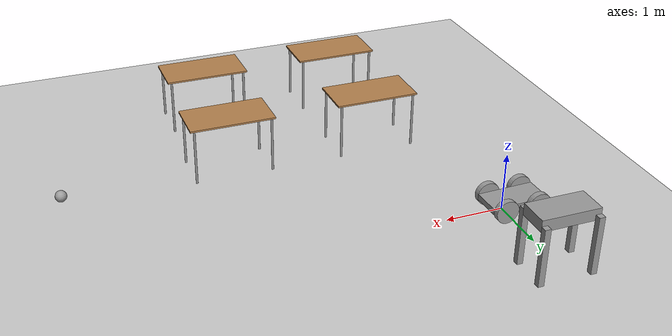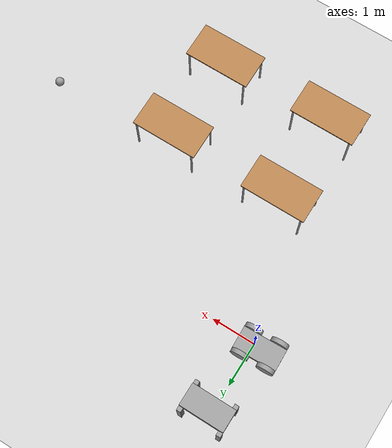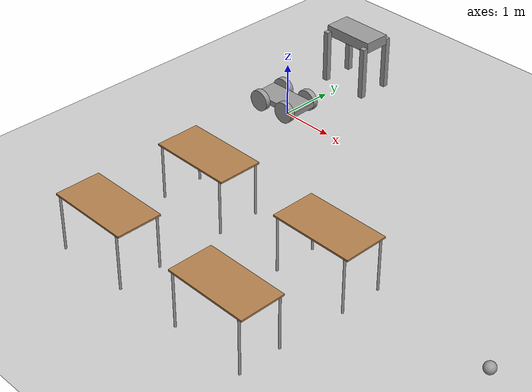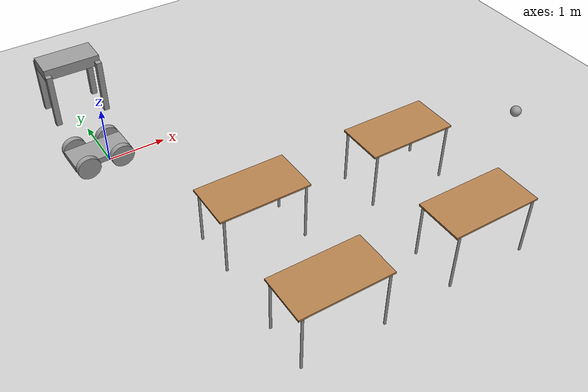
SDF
<sdf version="1.6">
 <world name="default">
  <model name="ground_plane">
   <static>1</static>
   <link name="link">
    <collision name="collision">
     <geometry><plane><normal>0 0 1</normal><size>100 100</size></plane></geometry>
     <surface><friction><ode><mu>100</mu><mu2>50</mu2></ode></friction></surface>
    </collision>
    <visual name="visual">
     <cast_shadows>0</cast_shadows>
     <geometry><plane><normal>0 0 1</normal><size>100 100</size></plane></geometry>
     <material>
      <script><uri>file://media/materials/scripts/gazebo.material</uri><name>Gazebo/Grey</name></script>
     </material>
    </visual>
   </link>
  </model>
  <model name="table">
   <static>1</static>
   <link name="link">
    <collision name="surface">
     <pose>0 0 1 0 -0 0</pose>
     <geometry><box><size>1.5 0.8 0.03</size></box></geometry>
     <surface><friction><ode><mu>0.6</mu><mu2>0.6</mu2></ode></friction></surface>
    </collision>
    <visual name="visual1">
     <pose>0 0 1 0 -0 0</pose>
     <geometry><box><size>1.5 0.8 0.03</size></box></geometry>
     <material>
      <script><uri>file://media/materials/scripts/gazebo.material</uri><name>Gazebo/Wood</name></script>
     </material>
    </visual>
    <collision name="front_left_leg">
     <pose>0.68 0.38 0.5 0 -0 0</pose>
     <geometry><cylinder><radius>0.02</radius><length>1</length></cylinder></geometry>
    </collision>
    <visual name="front_left_leg">
     <pose>0.68 0.38 0.5 0 -0 0</pose>
     <geometry><cylinder><radius>0.02</radius><length>1</length></cylinder></geometry>
     <material>
      <script><uri>file://media/materials/scripts/gazebo.material</uri><name>Gazebo/Grey</name></script>
     </material>
    </visual>
    <collision name="front_right_leg">
     <pose>0.68 -0.38 0.5 0 -0 0</pose>
     <geometry><cylinder><radius>0.02</radius><length>1</length></cylinder></geometry>
    </collision>
    <visual name="front_right_leg">
     <pose>0.68 -0.38 0.5 0 -0 0</pose>
     <geometry><cylinder><radius>0.02</radius><length>1</length></cylinder></geometry>
     <material>
      <script><uri>file://media/materials/scripts/gazebo.material</uri><name>Gazebo/Grey</name></script>
     </material>
    </visual>
    <collision name="back_right_leg">
     <pose>-0.68 -0.38 0.5 0 -0 0</pose>
     <geometry><cylinder><radius>0.02</radius><length>1</length></cylinder></geometry>
    </collision>
    <visual name="back_right_leg">
     <pose>-0.68 -0.38 0.5 0 -0 0</pose>
     <geometry><cylinder><radius>0.02</radius><length>1</length></cylinder></geometry>
     <material>
      <script><uri>file://media/materials/scripts/gazebo.material</uri><name>Gazebo/Grey</name></script>
     </material>
    </visual>
    <collision name="back_left_leg">
     <pose>-0.68 0.38 0.5 0 -0 0</pose>
     <geometry><cylinder><radius>0.02</radius><length>1</length></cylinder></geometry>
    </collision>
    <visual name="back_left_leg">
     <pose>-0.68 0.38 0.5 0 -0 0</pose>
     <geometry><cylinder><radius>0.02</radius><length>1</length></cylinder></geometry>
     <material>
      <script><uri>file://media/materials/scripts/gazebo.material</uri><name>Gazebo/Grey</name></script>
     </material>
    </visual>
   </link>
   <pose>3.69485 -4.8392 0 0 -0 0</pose>
  </model>
  <model name="table_0">
   <static>1</static>
   <link name="link">
    <collision name="surface">
     <pose>0 0 1 0 -0 0</pose>
     <geometry><box><size>1.5 0.8 0.03</size></box></geometry>
     <surface><friction><ode><mu>0.6</mu><mu2>0.6</mu2></ode></friction></surface>
    </collision>
    <visual name="visual1">
     <pose>0 0 1 0 -0 0</pose>
     <geometry><box><size>1.5 0.8 0.03</size></box></geometry>
     <material>
      <script><uri>file://media/materials/scripts/gazebo.material</uri><name>Gazebo/Wood</name></script>
     </material>
    </visual>
    <collision name="front_left_leg">
     <pose>0.68 0.38 0.5 0 -0 0</pose>
     <geometry><cylinder><radius>0.02</radius><length>1</length></cylinder></geometry>
    </collision>
    <visual name="front_left_leg">
     <pose>0.68 0.38 0.5 0 -0 0</pose>
     <geometry><cylinder><radius>0.02</radius><length>1</length></cylinder></geometry>
     <material>
      <script><uri>file://media/materials/scripts/gazebo.material</uri><name>Gazebo/Grey</name></script>
     </material>
    </visual>
    <collision name="front_right_leg">
     <pose>0.68 -0.38 0.5 0 -0 0</pose>
     <geometry><cylinder><radius>0.02</radius><length>1</length></cylinder></geometry>
    </collision>
    <visual name="front_right_leg">
     <pose>0.68 -0.38 0.5 0 -0 0</pose>
     <geometry><cylinder><radius>0.02</radius><length>1</length></cylinder></geometry>
     <material>
      <script><uri>file://media/materials/scripts/gazebo.material</uri><name>Gazebo/Grey</name></script>
     </material>
    </visual>
    <collision name="back_right_leg">
     <pose>-0.68 -0.38 0.5 0 -0 0</pose>
     <geometry><cylinder><radius>0.02</radius><length>1</length></cylinder></geometry>
    </collision>
    <visual name="back_right_leg">
     <pose>-0.68 -0.38 0.5 0 -0 0</pose>
     <geometry><cylinder><radius>0.02</radius><length>1</length></cylinder></geometry>
     <material>
      <script><uri>file://media/materials/scripts/gazebo.material</uri><name>Gazebo/Grey</name></script>
     </material>
    </visual>
    <collision name="back_left_leg">
     <pose>-0.68 0.38 0.5 0 -0 0</pose>
     <geometry><cylinder><radius>0.02</radius><length>1</length></cylinder></geometry>
    </collision>
    <visual name="back_left_leg">
     <pose>-0.68 0.38 0.5 0 -0 0</pose>
     <geometry><cylinder><radius>0.02</radius><length>1</length></cylinder></geometry>
     <material>
      <script><uri>file://media/materials/scripts/gazebo.material</uri><name>Gazebo/Grey</name></script>
     </material>
    </visual>
   </link>
   <pose>3.78546 -2.89544 0 0 -0 0</pose>
  </model>
  <model name="table_1">
   <static>1</static>
   <link name="link">
    <collision name="surface">
     <pose>0 0 1 0 -0 0</pose>
     <geometry><box><size>1.5 0.8 0.03</size></box></geometry>
     <surface><friction><ode><mu>0.6</mu><mu2>0.6</mu2></ode></friction></surface>
    </collision>
    <visual name="visual1">
     <pose>0 0 1 0 -0 0</pose>
     <geometry><box><size>1.5 0.8 0.03</size></box></geometry>
     <material>
      <script><uri>file://media/materials/scripts/gazebo.material</uri><name>Gazebo/Wood</name></script>
     </material>
    </visual>
    <collision name="front_left_leg">
     <pose>0.68 0.38 0.5 0 -0 0</pose>
     <geometry><cylinder><radius>0.02</radius><length>1</length></cylinder></geometry>
    </collision>
    <visual name="front_left_leg">
     <pose>0.68 0.38 0.5 0 -0 0</pose>
     <geometry><cylinder><radius>0.02</radius><length>1</length></cylinder></geometry>
     <material>
      <script><uri>file://media/materials/scripts/gazebo.material</uri><name>Gazebo/Grey</name></script>
     </material>
    </visual>
    <collision name="front_right_leg">
     <pose>0.68 -0.38 0.5 0 -0 0</pose>
     <geometry><cylinder><radius>0.02</radius><length>1</length></cylinder></geometry>
    </collision>
    <visual name="front_right_leg">
     <pose>0.68 -0.38 0.5 0 -0 0</pose>
     <geometry><cylinder><radius>0.02</radius><length>1</length></cylinder></geometry>
     <material>
      <script><uri>file://media/materials/scripts/gazebo.material</uri><name>Gazebo/Grey</name></script>
     </material>
    </visual>
    <collision name="back_right_leg">
     <pose>-0.68 -0.38 0.5 0 -0 0</pose>
     <geometry><cylinder><radius>0.02</radius><length>1</length></cylinder></geometry>
    </collision>
    <visual name="back_right_leg">
     <pose>-0.68 -0.38 0.5 0 -0 0</pose>
     <geometry><cylinder><radius>0.02</radius><length>1</length></cylinder></geometry>
     <material>
      <script><uri>file://media/materials/scripts/gazebo.material</uri><name>Gazebo/Grey</name></script>
     </material>
    </visual>
    <collision name="back_left_leg">
     <pose>-0.68 0.38 0.5 0 -0 0</pose>
     <geometry><cylinder><radius>0.02</radius><length>1</length></cylinder></geometry>
    </collision>
    <visual name="back_left_leg">
     <pose>-0.68 0.38 0.5 0 -0 0</pose>
     <geometry><cylinder><radius>0.02</radius><length>1</length></cylinder></geometry>
     <material>
      <script><uri>file://media/materials/scripts/gazebo.material</uri><name>Gazebo/Grey</name></script>
     </material>
    </visual>
   </link>
   <pose>1.13201 -4.88158 0 0 -0 0</pose>
  </model>
  <model name="table_2">
   <static>1</static>
   <link name="link">
    <collision name="surface">
     <pose>0 0 1 0 -0 0</pose>
     <geometry><box><size>1.5 0.8 0.03</size></box></geometry>
     <surface><friction><ode><mu>0.6</mu><mu2>0.6</mu2></ode></friction></surface>
    </collision>
    <visual name="visual1">
     <pose>0 0 1 0 -0 0</pose>
     <geometry><box><size>1.5 0.8 0.03</size></box></geometry>
     <material>
      <script><uri>file://media/materials/scripts/gazebo.material</uri><name>Gazebo/Wood</name></script>
     </material>
    </visual>
    <collision name="front_left_leg">
     <pose>0.68 0.38 0.5 0 -0 0</pose>
     <geometry><cylinder><radius>0.02</radius><length>1</length></cylinder></geometry>
    </collision>
    <visual name="front_left_leg">
     <pose>0.68 0.38 0.5 0 -0 0</pose>
     <geometry><cylinder><radius>0.02</radius><length>1</length></cylinder></geometry>
     <material>
      <script><uri>file://media/materials/scripts/gazebo.material</uri><name>Gazebo/Grey</name></script>
     </material>
    </visual>
    <collision name="front_right_leg">
     <pose>0.68 -0.38 0.5 0 -0 0</pose>
     <geometry><cylinder><radius>0.02</radius><length>1</length></cylinder></geometry>
    </collision>
    <visual name="front_right_leg">
     <pose>0.68 -0.38 0.5 0 -0 0</pose>
     <geometry><cylinder><radius>0.02</radius><length>1</length></cylinder></geometry>
     <material>
      <script><uri>file://media/materials/scripts/gazebo.material</uri><name>Gazebo/Grey</name></script>
     </material>
    </visual>
    <collision name="back_right_leg">
     <pose>-0.68 -0.38 0.5 0 -0 0</pose>
     <geometry><cylinder><radius>0.02</radius><length>1</length></cylinder></geometry>
    </collision>
    <visual name="back_right_leg">
     <pose>-0.68 -0.38 0.5 0 -0 0</pose>
     <geometry><cylinder><radius>0.02</radius><length>1</length></cylinder></geometry>
     <material>
      <script><uri>file://media/materials/scripts/gazebo.material</uri><name>Gazebo/Grey</name></script>
     </material>
    </visual>
    <collision name="back_left_leg">
     <pose>-0.68 0.38 0.5 0 -0 0</pose>
     <geometry><cylinder><radius>0.02</radius><length>1</length></cylinder></geometry>
    </collision>
    <visual name="back_left_leg">
     <pose>-0.68 0.38 0.5 0 -0 0</pose>
     <geometry><cylinder><radius>0.02</radius><length>1</length></cylinder></geometry>
     <material>
      <script><uri>file://media/materials/scripts/gazebo.material</uri><name>Gazebo/Grey</name></script>
     </material>
    </visual>
   </link>
   <pose>1.14087 -2.89178 0 0 -0 0</pose>
  </model>
  <model name="robot2">
   <link name="link_10">
    <inertial>
     <mass>1</mass>
     <inertia>
      <ixx>0.166667</ixx>
      <ixy>0</ixy>
      <ixz>0</ixz>
      <iyy>0.166667</iyy>
      <iyz>0</iyz>
      <izz>0.166667</izz>
     </inertia>
    </inertial>
    <visual name="visual">
     <geometry><box><size>1 0.5 0.1</size></box></geometry>
     <material>
      <lighting>1</lighting>
      <script><uri>file://media/materials/scripts/gazebo.material</uri><name>Gazebo/Grey</name></script>
      <shader type="pixel"><normal_map>__default__</normal_map></shader>
      <ambient>0.3 0.3 0.3 1</ambient>
      <diffuse>0.7 0.7 0.7 1</diffuse>
      <specular>0.01 0.01 0.01 1</specular>
      <emissive>0 0 0 1</emissive>
     </material>
    </visual>
    <collision name="collision">
     <geometry><box><size>1 0.5 0.1</size></box></geometry>
     <surface>
      <friction>
       <ode><mu>1</mu><mu2>1</mu2><fdir1>0 0 0</fdir1><slip1>0</slip1><slip2>0</slip2></ode>
       <torsional>
        <coefficient>1</coefficient>
        <patch_radius>0</patch_radius>
        <surface_radius>0</surface_radius>
        <use_patch_radius>1</use_patch_radius>
        <ode><slip>0</slip></ode>
       </torsional>
      </friction>
      <bounce><restitution_coefficient>0</restitution_coefficient><threshold>1e+06</threshold></bounce>
      <contact>
       <collide_without_contact>0</collide_without_contact>
       <collide_without_contact_bitmask>1</collide_without_contact_bitmask>
       <collide_bitmask>1</collide_bitmask>
       <ode>
        <soft_cfm>0</soft_cfm>
        <soft_erp>0.2</soft_erp>
        <kp>1e+13</kp>
        <kd>1</kd>
        <max_vel>0.01</max_vel>
        <min_depth>0</min_depth>
       </ode>
       <bullet>
        <split_impulse>1</split_impulse>
        <split_impulse_penetration_threshold>-0.01</split_impulse_penetration_threshold>
        <soft_cfm>0</soft_cfm>
        <soft_erp>0.2</soft_erp>
        <kp>1e+13</kp>
        <kd>1</kd>
       </bullet>
      </contact>
     </surface>
    </collision>
   </link>
   <link name="link_11_clone">
    <pose>-0.3 0.300019 0 0 -0 0</pose>
    <inertial>
     <mass>1</mass>
     <inertia><ixx>0.145833</ixx><ixy>0</ixy><ixz>0</ixz><iyy>0.145833</iyy><iyz>0</iyz><izz>0.125</izz></inertia>
    </inertial>
    <visual name="visual">
     <pose>0 0 0 1.5707 -0 0</pose>
     <geometry><cylinder><radius>0.2</radius><length>0.1</length></cylinder></geometry>
     <material>
      <lighting>1</lighting>
      <script><uri>file://media/materials/scripts/gazebo.material</uri><name>Gazebo/Grey</name></script>
      <shader type="pixel"><normal_map>__default__</normal_map></shader>
      <ambient>0.3 0.3 0.3 1</ambient>
      <diffuse>0.7 0.7 0.7 1</diffuse>
      <specular>0.01 0.01 0.01 1</specular>
      <emissive>0 0 0 1</emissive>
     </material>
    </visual>
    <collision name="collision">
     <pose>0 0 0 1.5707 -0 0</pose>
     <geometry><cylinder><radius>0.2</radius><length>0.1</length></cylinder></geometry>
     <surface>
      <friction>
       <ode><mu>1</mu><mu2>1</mu2><fdir1>0 0 0</fdir1><slip1>0</slip1><slip2>0</slip2></ode>
       <torsional>
        <coefficient>1</coefficient>
        <patch_radius>0</patch_radius>
        <surface_radius>0</surface_radius>
        <use_patch_radius>1</use_patch_radius>
        <ode><slip>0</slip></ode>
       </torsional>
      </friction>
      <bounce><restitution_coefficient>0</restitution_coefficient><threshold>1e+06</threshold></bounce>
      <contact>
       <collide_without_contact>0</collide_without_contact>
       <collide_without_contact_bitmask>1</collide_without_contact_bitmask>
       <collide_bitmask>1</collide_bitmask>
       <ode>
        <soft_cfm>0</soft_cfm>
        <soft_erp>0.2</soft_erp>
        <kp>1e+13</kp>
        <kd>1</kd>
        <max_vel>0.01</max_vel>
        <min_depth>0</min_depth>
       </ode>
       <bullet>
        <split_impulse>1</split_impulse>
        <split_impulse_penetration_threshold>-0.01</split_impulse_penetration_threshold>
        <soft_cfm>0</soft_cfm>
        <soft_erp>0.2</soft_erp>
        <kp>1e+13</kp>
        <kd>1</kd>
       </bullet>
      </contact>
     </surface>
    </collision>
   </link>
   <link name="link_11_clone_clone">
    <pose>-0.3 -0.300019 0 0 -0 0</pose>
    <inertial>
     <mass>1</mass>
     <inertia><ixx>0.145833</ixx><ixy>0</ixy><ixz>0</ixz><iyy>0.145833</iyy><iyz>0</iyz><izz>0.125</izz></inertia>
    </inertial>
    <visual name="visual">
     <pose>0 0 0 1.5707 -0 0</pose>
     <geometry><cylinder><radius>0.2</radius><length>0.1</length></cylinder></geometry>
     <material>
      <lighting>1</lighting>
      <script><uri>file://media/materials/scripts/gazebo.material</uri><name>Gazebo/Grey</name></script>
      <shader type="pixel"><normal_map>__default__</normal_map></shader>
      <ambient>0.3 0.3 0.3 1</ambient>
      <diffuse>0.7 0.7 0.7 1</diffuse>
      <specular>0.01 0.01 0.01 1</specular>
      <emissive>0 0 0 1</emissive>
     </material>
    </visual>
    <collision name="collision">
     <pose>0 0 0 1.5707 -0 0</pose>
     <geometry><cylinder><radius>0.2</radius><length>0.1</length></cylinder></geometry>
     <surface>
      <friction>
       <ode><mu>1</mu><mu2>1</mu2><fdir1>0 0 0</fdir1><slip1>0</slip1><slip2>0</slip2></ode>
       <torsional>
        <coefficient>1</coefficient>
        <patch_radius>0</patch_radius>
        <surface_radius>0</surface_radius>
        <use_patch_radius>1</use_patch_radius>
        <ode><slip>0</slip></ode>
       </torsional>
      </friction>
      <bounce><restitution_coefficient>0</restitution_coefficient><threshold>1e+06</threshold></bounce>
      <contact>
       <collide_without_contact>0</collide_without_contact>
       <collide_without_contact_bitmask>1</collide_without_contact_bitmask>
       <collide_bitmask>1</collide_bitmask>
       <ode>
        <soft_cfm>0</soft_cfm>
        <soft_erp>0.2</soft_erp>
        <kp>1e+13</kp>
        <kd>1</kd>
        <max_vel>0.01</max_vel>
        <min_depth>0</min_depth>
       </ode>
       <bullet>
        <split_impulse>1</split_impulse>
        <split_impulse_penetration_threshold>-0.01</split_impulse_penetration_threshold>
        <soft_cfm>0</soft_cfm>
        <soft_erp>0.2</soft_erp>
        <kp>1e+13</kp>
        <kd>1</kd>
       </bullet>
      </contact>
     </surface>
    </collision>
   </link>
   <link name="link_11_clone_clone_0">
    <pose>0.3 -0.300019 0 0 -0 0</pose>
    <inertial>
     <mass>1</mass>
     <inertia><ixx>0.145833</ixx><ixy>0</ixy><ixz>0</ixz><iyy>0.145833</iyy><iyz>0</iyz><izz>0.125</izz></inertia>
    </inertial>
    <visual name="visual">
     <pose>0 0 0 1.5707 -0 0</pose>
     <geometry><cylinder><radius>0.2</radius><length>0.1</length></cylinder></geometry>
     <material>
      <lighting>1</lighting>
      <script><uri>file://media/materials/scripts/gazebo.material</uri><name>Gazebo/Grey</name></script>
      <shader type="pixel"><normal_map>__default__</normal_map></shader>
      <ambient>0.3 0.3 0.3 1</ambient>
      <diffuse>0.7 0.7 0.7 1</diffuse>
      <specular>0.01 0.01 0.01 1</specular>
      <emissive>0 0 0 1</emissive>
     </material>
    </visual>
    <collision name="collision">
     <pose>0 0 0 1.5707 -0 0</pose>
     <geometry><cylinder><radius>0.2</radius><length>0.1</length></cylinder></geometry>
     <surface>
      <friction>
       <ode><mu>1</mu><mu2>1</mu2><fdir1>0 0 0</fdir1><slip1>0</slip1><slip2>0</slip2></ode>
       <torsional>
        <coefficient>1</coefficient>
        <patch_radius>0</patch_radius>
        <surface_radius>0</surface_radius>
        <use_patch_radius>1</use_patch_radius>
        <ode><slip>0</slip></ode>
       </torsional>
      </friction>
      <bounce><restitution_coefficient>0</restitution_coefficient><threshold>1e+06</threshold></bounce>
      <contact>
       <collide_without_contact>0</collide_without_contact>
       <collide_without_contact_bitmask>1</collide_without_contact_bitmask>
       <collide_bitmask>1</collide_bitmask>
       <ode>
        <soft_cfm>0</soft_cfm>
        <soft_erp>0.2</soft_erp>
        <kp>1e+13</kp>
        <kd>1</kd>
        <max_vel>0.01</max_vel>
        <min_depth>0</min_depth>
       </ode>
       <bullet>
        <split_impulse>1</split_impulse>
        <split_impulse_penetration_threshold>-0.01</split_impulse_penetration_threshold>
        <soft_cfm>0</soft_cfm>
        <soft_erp>0.2</soft_erp>
        <kp>1e+13</kp>
        <kd>1</kd>
       </bullet>
      </contact>
     </surface>
    </collision>
   </link>
   <link name="link_11_clone_clone_1">
    <pose>0.3 0.300019 0 0 -0 0</pose>
    <inertial>
     <mass>1</mass>
     <inertia><ixx>0.145833</ixx><ixy>0</ixy><ixz>0</ixz><iyy>0.145833</iyy><iyz>0</iyz><izz>0.125</izz></inertia>
    </inertial>
    <visual name="visual">
     <pose>0 0 0 1.5707 -0 0</pose>
     <geometry><cylinder><radius>0.2</radius><length>0.1</length></cylinder></geometry>
     <material>
      <lighting>1</lighting>
      <script><uri>file://media/materials/scripts/gazebo.material</uri><name>Gazebo/Grey</name></script>
      <shader type="pixel"><normal_map>__default__</normal_map></shader>
      <ambient>0.3 0.3 0.3 1</ambient>
      <diffuse>0.7 0.7 0.7 1</diffuse>
      <specular>0.01 0.01 0.01 1</specular>
      <emissive>0 0 0 1</emissive>
     </material>
    </visual>
    <collision name="collision">
     <pose>0 0 0 1.5707 -0 0</pose>
     <geometry><cylinder><radius>0.2</radius><length>0.1</length></cylinder></geometry>
     <surface>
      <friction>
       <ode><mu>1</mu><mu2>1</mu2><fdir1>0 0 0</fdir1><slip1>0</slip1><slip2>0</slip2></ode>
       <torsional>
        <coefficient>1</coefficient>
        <patch_radius>0</patch_radius>
        <surface_radius>0</surface_radius>
        <use_patch_radius>1</use_patch_radius>
        <ode><slip>0</slip></ode>
       </torsional>
      </friction>
      <bounce><restitution_coefficient>0</restitution_coefficient><threshold>1e+06</threshold></bounce>
      <contact>
       <collide_without_contact>0</collide_without_contact>
       <collide_without_contact_bitmask>1</collide_without_contact_bitmask>
       <collide_bitmask>1</collide_bitmask>
       <ode>
        <soft_cfm>0</soft_cfm>
        <soft_erp>0.2</soft_erp>
        <kp>1e+13</kp>
        <kd>1</kd>
        <max_vel>0.01</max_vel>
        <min_depth>0</min_depth>
       </ode>
       <bullet>
        <split_impulse>1</split_impulse>
        <split_impulse_penetration_threshold>-0.01</split_impulse_penetration_threshold>
        <soft_cfm>0</soft_cfm>
        <soft_erp>0.2</soft_erp>
        <kp>1e+13</kp>
        <kd>1</kd>
       </bullet>
      </contact>
     </surface>
    </collision>
   </link>
   <joint name="link_10_JOINT_16" type="revolute">
    <parent>link_10</parent>
    <child>link_11_clone_clone</child>
    <axis>
     <xyz>0 0 1</xyz>
     <use_parent_model_frame>0</use_parent_model_frame>
     <limit>
      <lower>-1.79769e+308</lower>
      <upper>1.79769e+308</upper>
      <effort>-1</effort>
      <velocity>-1</velocity>
     </limit>
     <dynamics>
      <spring_reference>0</spring_reference>
      <spring_stiffness>0</spring_stiffness>
      <damping>0</damping>
     </dynamics>
    </axis>
    <physics>
     <ode><limit><cfm>0</cfm><erp>0.2</erp></limit><suspension><cfm>0</cfm><erp>0.2</erp></suspension></ode>
    </physics>
   </joint>
   <joint name="link_10_JOINT_17" type="revolute">
    <parent>link_10</parent>
    <child>link_11_clone</child>
    <axis>
     <xyz>0 0 1</xyz>
     <use_parent_model_frame>0</use_parent_model_frame>
     <limit>
      <lower>-1.79769e+308</lower>
      <upper>1.79769e+308</upper>
      <effort>-1</effort>
      <velocity>-1</velocity>
     </limit>
     <dynamics>
      <spring_reference>0</spring_reference>
      <spring_stiffness>0</spring_stiffness>
      <damping>0</damping>
     </dynamics>
    </axis>
    <physics>
     <ode><limit><cfm>0</cfm><erp>0.2</erp></limit><suspension><cfm>0</cfm><erp>0.2</erp></suspension></ode>
    </physics>
   </joint>
   <joint name="link_10_JOINT_18" type="revolute">
    <parent>link_10</parent>
    <child>link_11_clone_clone_0</child>
    <axis>
     <xyz>0 0 1</xyz>
     <use_parent_model_frame>0</use_parent_model_frame>
     <limit>
      <lower>-1.79769e+308</lower>
      <upper>1.79769e+308</upper>
      <effort>-1</effort>
      <velocity>-1</velocity>
     </limit>
     <dynamics>
      <spring_reference>0</spring_reference>
      <spring_stiffness>0</spring_stiffness>
      <damping>0</damping>
     </dynamics>
    </axis>
    <physics>
     <ode><limit><cfm>0</cfm><erp>0.2</erp></limit><suspension><cfm>0</cfm><erp>0.2</erp></suspension></ode>
    </physics>
   </joint>
   <joint name="link_10_JOINT_19" type="revolute">
    <parent>link_10</parent>
    <child>link_11_clone_clone_1</child>
    <axis>
     <xyz>0 0 1</xyz>
     <use_parent_model_frame>0</use_parent_model_frame>
     <limit>
      <lower>-1.79769e+308</lower>
      <upper>1.79769e+308</upper>
      <effort>-1</effort>
      <velocity>-1</velocity>
     </limit>
     <dynamics>
      <spring_reference>0</spring_reference>
      <spring_stiffness>0</spring_stiffness>
      <damping>0</damping>
     </dynamics>
    </axis>
    <physics>
     <ode><limit><cfm>0</cfm><erp>0.2</erp></limit><suspension><cfm>0</cfm><erp>0.2</erp></suspension></ode>
    </physics>
   </joint>
   <static>0</static>
   <pose>-0.152085 0.055005 0.200005 0 -2e-06 0.031109</pose>
  </model>
  <model name="robot3">
   <link name="link_0">
    <pose>0 -0 0.4 0 -0 0</pose>
    <inertial>
     <mass>1</mass>
     <inertia>
      <ixx>0.166667</ixx>
      <ixy>0</ixy>
      <ixz>0</ixz>
      <iyy>0.166667</iyy>
      <iyz>0</iyz>
      <izz>0.166667</izz>
     </inertia>
    </inertial>
    <visual name="visual">
     <geometry><box><size>1 0.5 0.2</size></box></geometry>
     <material>
      <lighting>1</lighting>
      <script><uri>file://media/materials/scripts/gazebo.material</uri><name>Gazebo/Grey</name></script>
      <shader type="pixel"><normal_map>__default__</normal_map></shader>
      <ambient>0.3 0.3 0.3 1</ambient>
      <diffuse>0.7 0.7 0.7 1</diffuse>
      <specular>0.01 0.01 0.01 1</specular>
      <emissive>0 0 0 1</emissive>
     </material>
    </visual>
    <collision name="collision">
     <geometry><box><size>1 0.5 0.2</size></box></geometry>
     <surface>
      <friction>
       <ode><mu>1</mu><mu2>1</mu2><fdir1>0 0 0</fdir1><slip1>0</slip1><slip2>0</slip2></ode>
       <torsional>
        <coefficient>1</coefficient>
        <patch_radius>0</patch_radius>
        <surface_radius>0</surface_radius>
        <use_patch_radius>1</use_patch_radius>
        <ode><slip>0</slip></ode>
       </torsional>
      </friction>
      <bounce><restitution_coefficient>0</restitution_coefficient><threshold>1e+06</threshold></bounce>
      <contact>
       <collide_without_contact>0</collide_without_contact>
       <collide_without_contact_bitmask>1</collide_without_contact_bitmask>
       <collide_bitmask>1</collide_bitmask>
       <ode>
        <soft_cfm>0</soft_cfm>
        <soft_erp>0.2</soft_erp>
        <kp>1e+13</kp>
        <kd>1</kd>
        <max_vel>0.01</max_vel>
        <min_depth>0</min_depth>
       </ode>
       <bullet>
        <split_impulse>1</split_impulse>
        <split_impulse_penetration_threshold>-0.01</split_impulse_penetration_threshold>
        <soft_cfm>0</soft_cfm>
        <soft_erp>0.2</soft_erp>
        <kp>1e+13</kp>
        <kd>1</kd>
       </bullet>
      </contact>
     </surface>
    </collision>
   </link>
   <link name="link_1_clone">
    <pose>-0.45 0.3 -0.1 0 -0 0</pose>
    <inertial>
     <mass>1</mass>
     <inertia>
      <ixx>0.166667</ixx>
      <ixy>0</ixy>
      <ixz>0</ixz>
      <iyy>0.166667</iyy>
      <iyz>0</iyz>
      <izz>0.166667</izz>
     </inertia>
    </inertial>
    <visual name="visual">
     <geometry><box><size>0.1 0.1 1</size></box></geometry>
     <material>
      <lighting>1</lighting>
      <script><uri>file://media/materials/scripts/gazebo.material</uri><name>Gazebo/Grey</name></script>
      <shader type="pixel"><normal_map>__default__</normal_map></shader>
      <ambient>0.3 0.3 0.3 1</ambient>
      <diffuse>0.7 0.7 0.7 1</diffuse>
      <specular>0.01 0.01 0.01 1</specular>
      <emissive>0 0 0 1</emissive>
     </material>
    </visual>
    <collision name="collision">
     <geometry><box><size>0.1 0.1 1</size></box></geometry>
     <surface>
      <friction>
       <ode><mu>1</mu><mu2>1</mu2><fdir1>0 0 0</fdir1><slip1>0</slip1><slip2>0</slip2></ode>
       <torsional>
        <coefficient>1</coefficient>
        <patch_radius>0</patch_radius>
        <surface_radius>0</surface_radius>
        <use_patch_radius>1</use_patch_radius>
        <ode><slip>0</slip></ode>
       </torsional>
      </friction>
      <bounce><restitution_coefficient>0</restitution_coefficient><threshold>1e+06</threshold></bounce>
      <contact>
       <collide_without_contact>0</collide_without_contact>
       <collide_without_contact_bitmask>1</collide_without_contact_bitmask>
       <collide_bitmask>1</collide_bitmask>
       <ode>
        <soft_cfm>0</soft_cfm>
        <soft_erp>0.2</soft_erp>
        <kp>1e+13</kp>
        <kd>1</kd>
        <max_vel>0.01</max_vel>
        <min_depth>0</min_depth>
       </ode>
       <bullet>
        <split_impulse>1</split_impulse>
        <split_impulse_penetration_threshold>-0.01</split_impulse_penetration_threshold>
        <soft_cfm>0</soft_cfm>
        <soft_erp>0.2</soft_erp>
        <kp>1e+13</kp>
        <kd>1</kd>
       </bullet>
      </contact>
     </surface>
    </collision>
   </link>
   <link name="link_1_clone_clone">
    <pose>-0.45 -0.3 -0.1 0 -0 0</pose>
    <inertial>
     <mass>1</mass>
     <inertia>
      <ixx>0.166667</ixx>
      <ixy>0</ixy>
      <ixz>0</ixz>
      <iyy>0.166667</iyy>
      <iyz>0</iyz>
      <izz>0.166667</izz>
     </inertia>
    </inertial>
    <visual name="visual">
     <geometry><box><size>0.1 0.1 1</size></box></geometry>
     <material>
      <lighting>1</lighting>
      <script><uri>file://media/materials/scripts/gazebo.material</uri><name>Gazebo/Grey</name></script>
      <shader type="pixel"><normal_map>__default__</normal_map></shader>
      <ambient>0.3 0.3 0.3 1</ambient>
      <diffuse>0.7 0.7 0.7 1</diffuse>
      <specular>0.01 0.01 0.01 1</specular>
      <emissive>0 0 0 1</emissive>
     </material>
    </visual>
    <collision name="collision">
     <geometry><box><size>0.1 0.1 1</size></box></geometry>
     <surface>
      <friction>
       <ode><mu>1</mu><mu2>1</mu2><fdir1>0 0 0</fdir1><slip1>0</slip1><slip2>0</slip2></ode>
       <torsional>
        <coefficient>1</coefficient>
        <patch_radius>0</patch_radius>
        <surface_radius>0</surface_radius>
        <use_patch_radius>1</use_patch_radius>
        <ode><slip>0</slip></ode>
       </torsional>
      </friction>
      <bounce><restitution_coefficient>0</restitution_coefficient><threshold>1e+06</threshold></bounce>
      <contact>
       <collide_without_contact>0</collide_without_contact>
       <collide_without_contact_bitmask>1</collide_without_contact_bitmask>
       <collide_bitmask>1</collide_bitmask>
       <ode>
        <soft_cfm>0</soft_cfm>
        <soft_erp>0.2</soft_erp>
        <kp>1e+13</kp>
        <kd>1</kd>
        <max_vel>0.01</max_vel>
        <min_depth>0</min_depth>
       </ode>
       <bullet>
        <split_impulse>1</split_impulse>
        <split_impulse_penetration_threshold>-0.01</split_impulse_penetration_threshold>
        <soft_cfm>0</soft_cfm>
        <soft_erp>0.2</soft_erp>
        <kp>1e+13</kp>
        <kd>1</kd>
       </bullet>
      </contact>
     </surface>
    </collision>
   </link>
   <link name="link_1_clone_clone_0">
    <pose>0.45 -0.3 -0.1 0 -0 0</pose>
    <inertial>
     <mass>1</mass>
     <inertia>
      <ixx>0.166667</ixx>
      <ixy>0</ixy>
      <ixz>0</ixz>
      <iyy>0.166667</iyy>
      <iyz>0</iyz>
      <izz>0.166667</izz>
     </inertia>
    </inertial>
    <visual name="visual">
     <geometry><box><size>0.1 0.1 1</size></box></geometry>
     <material>
      <lighting>1</lighting>
      <script><uri>file://media/materials/scripts/gazebo.material</uri><name>Gazebo/Grey</name></script>
      <shader type="pixel"><normal_map>__default__</normal_map></shader>
      <ambient>0.3 0.3 0.3 1</ambient>
      <diffuse>0.7 0.7 0.7 1</diffuse>
      <specular>0.01 0.01 0.01 1</specular>
      <emissive>0 0 0 1</emissive>
     </material>
    </visual>
    <collision name="collision">
     <geometry><box><size>0.1 0.1 1</size></box></geometry>
     <surface>
      <friction>
       <ode><mu>1</mu><mu2>1</mu2><fdir1>0 0 0</fdir1><slip1>0</slip1><slip2>0</slip2></ode>
       <torsional>
        <coefficient>1</coefficient>
        <patch_radius>0</patch_radius>
        <surface_radius>0</surface_radius>
        <use_patch_radius>1</use_patch_radius>
        <ode><slip>0</slip></ode>
       </torsional>
      </friction>
      <bounce><restitution_coefficient>0</restitution_coefficient><threshold>1e+06</threshold></bounce>
      <contact>
       <collide_without_contact>0</collide_without_contact>
       <collide_without_contact_bitmask>1</collide_without_contact_bitmask>
       <collide_bitmask>1</collide_bitmask>
       <ode>
        <soft_cfm>0</soft_cfm>
        <soft_erp>0.2</soft_erp>
        <kp>1e+13</kp>
        <kd>1</kd>
        <max_vel>0.01</max_vel>
        <min_depth>0</min_depth>
       </ode>
       <bullet>
        <split_impulse>1</split_impulse>
        <split_impulse_penetration_threshold>-0.01</split_impulse_penetration_threshold>
        <soft_cfm>0</soft_cfm>
        <soft_erp>0.2</soft_erp>
        <kp>1e+13</kp>
        <kd>1</kd>
       </bullet>
      </contact>
     </surface>
    </collision>
   </link>
   <link name="link_1_clone_clone_1">
    <pose>0.45 0.3 -0.1 0 -0 0</pose>
    <inertial>
     <mass>1</mass>
     <inertia>
      <ixx>0.166667</ixx>
      <ixy>0</ixy>
      <ixz>0</ixz>
      <iyy>0.166667</iyy>
      <iyz>0</iyz>
      <izz>0.166667</izz>
     </inertia>
    </inertial>
    <visual name="visual">
     <geometry><box><size>0.1 0.1 1</size></box></geometry>
     <material>
      <lighting>1</lighting>
      <script><uri>file://media/materials/scripts/gazebo.material</uri><name>Gazebo/Grey</name></script>
      <shader type="pixel"><normal_map>__default__</normal_map></shader>
      <ambient>0.3 0.3 0.3 1</ambient>
      <diffuse>0.7 0.7 0.7 1</diffuse>
      <specular>0.01 0.01 0.01 1</specular>
      <emissive>0 0 0 1</emissive>
     </material>
    </visual>
    <collision name="collision">
     <geometry><box><size>0.1 0.1 1</size></box></geometry>
     <surface>
      <friction>
       <ode><mu>1</mu><mu2>1</mu2><fdir1>0 0 0</fdir1><slip1>0</slip1><slip2>0</slip2></ode>
       <torsional>
        <coefficient>1</coefficient>
        <patch_radius>0</patch_radius>
        <surface_radius>0</surface_radius>
        <use_patch_radius>1</use_patch_radius>
        <ode><slip>0</slip></ode>
       </torsional>
      </friction>
      <bounce><restitution_coefficient>0</restitution_coefficient><threshold>1e+06</threshold></bounce>
      <contact>
       <collide_without_contact>0</collide_without_contact>
       <collide_without_contact_bitmask>1</collide_without_contact_bitmask>
       <collide_bitmask>1</collide_bitmask>
       <ode>
        <soft_cfm>0</soft_cfm>
        <soft_erp>0.2</soft_erp>
        <kp>1e+13</kp>
        <kd>1</kd>
        <max_vel>0.01</max_vel>
        <min_depth>0</min_depth>
       </ode>
       <bullet>
        <split_impulse>1</split_impulse>
        <split_impulse_penetration_threshold>-0.01</split_impulse_penetration_threshold>
        <soft_cfm>0</soft_cfm>
        <soft_erp>0.2</soft_erp>
        <kp>1e+13</kp>
        <kd>1</kd>
       </bullet>
      </contact>
     </surface>
    </collision>
   </link>
   <joint name="link_0_JOINT_5" type="revolute">
    <parent>link_0</parent>
    <child>link_1_clone_clone</child>
    <axis>
     <xyz>0 0 1</xyz>
     <use_parent_model_frame>0</use_parent_model_frame>
     <limit>
      <lower>-1.79769e+308</lower>
      <upper>1.79769e+308</upper>
      <effort>-1</effort>
      <velocity>-1</velocity>
     </limit>
     <dynamics>
      <spring_reference>0</spring_reference>
      <spring_stiffness>0</spring_stiffness>
      <damping>0</damping>
     </dynamics>
    </axis>
    <physics>
     <ode><limit><cfm>0</cfm><erp>0.2</erp></limit><suspension><cfm>0</cfm><erp>0.2</erp></suspension></ode>
    </physics>
   </joint>
   <joint name="link_0_JOINT_6" type="revolute">
    <parent>link_0</parent>
    <child>link_1_clone</child>
    <axis>
     <xyz>0 0 1</xyz>
     <use_parent_model_frame>0</use_parent_model_frame>
     <limit>
      <lower>-1.79769e+308</lower>
      <upper>1.79769e+308</upper>
      <effort>-1</effort>
      <velocity>-1</velocity>
     </limit>
     <dynamics>
      <spring_reference>0</spring_reference>
      <spring_stiffness>0</spring_stiffness>
      <damping>0</damping>
     </dynamics>
    </axis>
    <physics>
     <ode><limit><cfm>0</cfm><erp>0.2</erp></limit><suspension><cfm>0</cfm><erp>0.2</erp></suspension></ode>
    </physics>
   </joint>
   <joint name="link_0_JOINT_7" type="revolute">
    <parent>link_0</parent>
    <child>link_1_clone_clone_0</child>
    <axis>
     <xyz>0 0 1</xyz>
     <use_parent_model_frame>0</use_parent_model_frame>
     <limit>
      <lower>-1.79769e+308</lower>
      <upper>1.79769e+308</upper>
      <effort>-1</effort>
      <velocity>-1</velocity>
     </limit>
     <dynamics>
      <spring_reference>0</spring_reference>
      <spring_stiffness>0</spring_stiffness>
      <damping>0</damping>
      <friction>0</friction>
     </dynamics>
    </axis>
    <physics>
     <ode><limit><cfm>0</cfm><erp>0.2</erp></limit><suspension><cfm>0</cfm><erp>0.2</erp></suspension></ode>
    </physics>
   </joint>
   <joint name="link_0_JOINT_8" type="revolute">
    <parent>link_0</parent>
    <child>link_1_clone_clone_1</child>
    <axis>
     <xyz>0 0 1</xyz>
     <use_parent_model_frame>0</use_parent_model_frame>
     <limit>
      <lower>-1.79769e+308</lower>
      <upper>1.79769e+308</upper>
      <effort>-1</effort>
      <velocity>-1</velocity>
     </limit>
     <dynamics>
      <spring_reference>0</spring_reference>
      <spring_stiffness>0</spring_stiffness>
      <damping>0</damping>
     </dynamics>
    </axis>
    <physics>
     <ode><limit><cfm>0</cfm><erp>0.2</erp></limit><suspension><cfm>0</cfm><erp>0.2</erp></suspension></ode>
    </physics>
   </joint>
   <static>0</static>
   <pose>0.06873 1.70174 0.6 1e-06 1e-06 -0.003313</pose>
  </model>
  <model name="my_ball">
   <link name="link_0">
    <inertial>
     <mass>1</mass>
     <inertia><ixx>0.1</ixx><ixy>0</ixy><ixz>0</ixz><iyy>0.1</iyy><iyz>0</iyz><izz>0.1</izz></inertia>
    </inertial>
    <visual name="visual">
     <geometry><sphere><radius>0.1</radius></sphere></geometry>
     <material>
      <lighting>1</lighting>
      <script><uri>file://media/materials/scripts/gazebo.material</uri><name>Gazebo/Grey</name></script>
      <shader type="pixel"><normal_map>__default__</normal_map></shader>
      <ambient>1 1 1 1</ambient>
      <diffuse>1 1 1 1</diffuse>
      <specular>1 1 1 1</specular>
      <emissive>1 1 1 1</emissive>
     </material>
    </visual>
    <collision name="collision">
     <geometry><sphere><radius>0.1</radius></sphere></geometry>
     <surface>
      <friction>
       <ode><mu>1</mu><mu2>1</mu2><fdir1>0 0 0</fdir1><slip1>0</slip1><slip2>0</slip2></ode>
       <torsional>
        <coefficient>1</coefficient>
        <patch_radius>0</patch_radius>
        <surface_radius>0</surface_radius>
        <use_patch_radius>1</use_patch_radius>
        <ode><slip>0</slip></ode>
       </torsional>
      </friction>
      <bounce><restitution_coefficient>0</restitution_coefficient><threshold>1e+06</threshold></bounce>
      <contact>
       <collide_without_contact>0</collide_without_contact>
       <collide_without_contact_bitmask>1</collide_without_contact_bitmask>
       <collide_bitmask>1</collide_bitmask>
       <ode>
        <soft_cfm>0</soft_cfm>
        <soft_erp>0.2</soft_erp>
        <kp>1e+13</kp>
        <kd>1</kd>
        <max_vel>0.01</max_vel>
        <min_depth>0</min_depth>
       </ode>
       <bullet>
        <split_impulse>1</split_impulse>
        <split_impulse_penetration_threshold>-0.01</split_impulse_penetration_threshold>
        <soft_cfm>0</soft_cfm>
        <soft_erp>0.2</soft_erp>
        <kp>1e+13</kp>
        <kd>1</kd>
       </bullet>
      </contact>
     </surface>
    </collision>
   </link>
   <static>0</static>
   <pose>6.72022 -2.7371 0.1 0 -0 0</pose>
  </model>
 </world>
</sdf>
